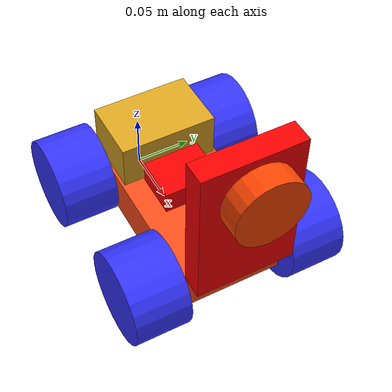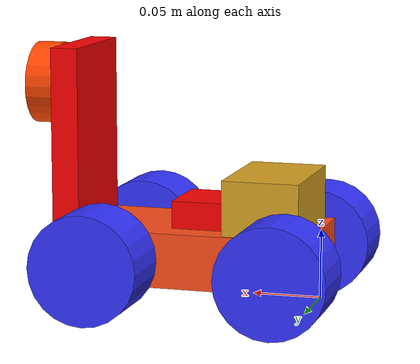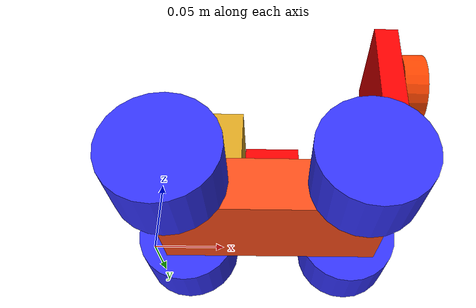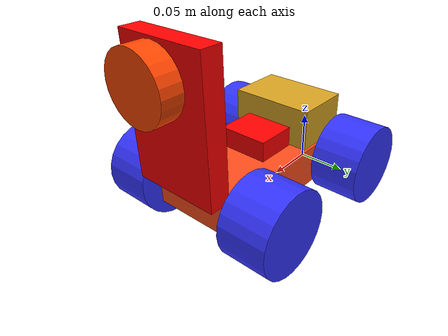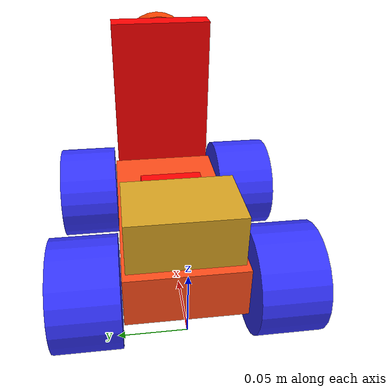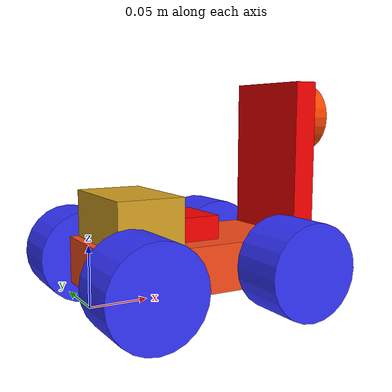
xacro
<?xml version="1.0"?>
<robot xmlns:xacro="http://www.ros.org/wiki/xacro"  name="piper">

    <xacro:include filename="robot_core.xacro" />

    <xacro:include filename="ros2_control.xacro" />

    <xacro:include filename="lidar.xacro" />

    <xacro:include filename="imu.xacro" />

</robot>

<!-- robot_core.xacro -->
<robot xmlns:xacro="http://www.ros.org/wiki/xacro" >

    <xacro:include filename="inertial_macros.xacro"/>

    <material name="white">
        <color rgba="1 1 1 1" />
    </material>

    <material name="orange">
        <color rgba="1 0.3 0.1 1"/>
    </material>

    <material name="blue">
        <color rgba="0.2 0.2 1 1"/>
    </material>

    <material name="black">
        <color rgba="0 0 0 1"/>
    </material>

    <material name="red">
        <color rgba="1 0 0 1"/>
    </material>

    <material name="golden rod">
        <color rgba="0.85 0.64 0.13 1"/>
    </material>

    <material name="orange red">
        <color rgba="1 0.27 0 1"/>
    </material>

    <!-- BASE LINK -->

    <link name="base_link">

    </link>

    <!-- CHASSIS LINK -->

    <joint name="chassis_joint" type="fixed">
        <parent link="base_link"/>
        <child link="chassis"/>
        <origin xyz="0.085 0 0.01"/>
    </joint>

    <link name="chassis">
        <visual>
            <origin xyz="0 0 0.02"/>
            <geometry>
                <box size="0.17 0.09 0.04"/>
            </geometry>
            <material name="orange"/>
        </visual>
        <collision>
            <origin xyz="0 0 0.02"/>
            <geometry>
                <box size="0.17 0.09 0.04"/>
            </geometry>
        </collision>
        <xacro:inertial_box mass="1" x="0.17" y="0.09" z="0.04">
            <origin xyz="0 0 0.02" rpy="0 0 0"/>
        </xacro:inertial_box>
    </link>

    <gazebo reference="chassis">
        <material>Gazebo/Orange</material>
    </gazebo>

    <!-- LIDAR HOLDER -->

    <joint name="lidar_holder_joint" type="fixed">
        <parent link="chassis"/>
        <child link="lidar_holder"/>
        <origin xyz="0.095 0 0.04"/>
    </joint>

    <link name="lidar_holder">
        <visual>
            <origin xyz="0 0 0.065"/>
            <geometry>
                <box size="0.02 0.085 0.13"/>
            </geometry>
            <material name="red"/>
        </visual>
        <collision>
            <origin xyz="0 0 0.065"/>
            <geometry>
                <box size="0.02 0.085 0.13"/>
            </geometry>
        </collision>
        <xacro:inertial_box mass="0.2" x="0.02" y="0.085" z="0.13">
            <origin xyz="0 0 0.065" rpy="0 0 0"/>
        </xacro:inertial_box>

    </link>

    <gazebo reference="lidar_holder">
        <material>Gazebo/Red</material>
    </gazebo>

    <!-- UP BOARD -->

    <joint name="up_board_joint" type="fixed">
        <parent link="chassis"/>
        <child link="up_board"/>
        <origin xyz="-0.05 0 0.04"/>
    </joint>

    <link name="up_board">
        <visual>
            <origin xyz="0 0 0.02"/>
            <geometry>
                <box size="0.056 0.085 0.04"/>
            </geometry>
            <material name="golden rod"/>
        </visual>
        <collision>
            <origin xyz="0 0 0.02"/>
            <geometry>
                <box size="0.056 0.085 0.04"/>
            </geometry>
        </collision>
        <xacro:inertial_box mass="0.2" x="0.056" y="0.085" z="0.04">
            <origin xyz="0 0 0.02" rpy="0 0 0"/>
        </xacro:inertial_box>
    </link>

    <gazebo reference="up_board">
        <material>Gazebo/Gold</material>
    </gazebo>

    <!-- FRONT LEFT WHEEL LINK -->

    <joint name="front_left_wheel_joint" type="continuous">
        <parent link="chassis"/>
        <child link="front_left_wheel"/>
        <origin xyz="0.065 0.07 0.02" rpy="-${pi/2} 0 0" />
        <axis xyz="0 0 1"/>
    </joint>

    <link name="front_left_wheel">
        <visual>
            <geometry>
                <cylinder radius="0.04" length="0.048" n="50"/>
            </geometry>
            <material name="blue"/>
        </visual>
        <collision>
            <geometry>
                <cylinder radius="0.04" length="0.048" n="50"/>
            </geometry>
        </collision>
        <xacro:inertial_cylinder mass="2" length="0.048" radius="0.04">
            <origin xyz="0 0 0" rpy="0 0 0"/>
        </xacro:inertial_cylinder>
    </link>

    <gazebo reference="front_left_wheel">
        <material>Gazebo/Blue</material>
    </gazebo>

    <!-- FRONT RIGHT WHEEL LINK -->

    <joint name="front_right_wheel_joint" type="continuous">
        <parent link="chassis"/>
        <child link="front_right_wheel"/>
        <origin xyz="0.065 -0.07 0.02" rpy="${pi/2} 0 0" />
        <axis xyz="0 0 -1"/>
    </joint>

    <link name="front_right_wheel">
        <visual>
            <geometry>
                <cylinder radius="0.04" length="0.048" n="50"/>
            </geometry>
            <material name="blue"/>
        </visual>
        <collision>
            <geometry>
                <cylinder radius="0.04" length="0.048" n="50"/>
            </geometry>
        </collision>
        <xacro:inertial_cylinder mass="2" length="0.048" radius="0.04">
            <origin xyz="0 0 0" rpy="0 0 0"/>
        </xacro:inertial_cylinder>
    </link>

    <gazebo reference="front_right_wheel">
        <material>Gazebo/Blue</material>
    </gazebo>

    <!-- BACK LEFT WHEEL LINK -->

    <joint name="back_left_wheel_joint" type="continuous">
        <parent link="chassis"/>
        <child link="back_left_wheel"/>
        <origin xyz="-0.07 0.07 0.02" rpy="-${pi/2} 0 0" />
        <axis xyz="0 0 1"/>
    </joint>

    <link name="back_left_wheel">
        <visual>
            <geometry>
                <cylinder radius="0.04" length="0.048" n="50"/>
            </geometry>
            <material name="blue"/>
        </visual>
        <collision>
            <geometry>
                <cylinder radius="0.04" length="0.048" n="50"/>
            </geometry>
        </collision>
        <xacro:inertial_cylinder mass="2" length="0.048" radius="0.04">
            <origin xyz="0 0 0" rpy="0 0 0"/>
        </xacro:inertial_cylinder>
    </link>

    <gazebo reference="back_left_wheel">
        <material>Gazebo/Blue</material>
    </gazebo>

    <!-- BACK RIGHT WHEEL LINK -->

    <joint name="back_right_wheel_joint" type="continuous">
        <parent link="chassis"/>
        <child link="back_right_wheel"/>
        <origin xyz="-0.07 -0.07 0.02" rpy="${pi/2} 0 0" />
        <axis xyz="0 0 -1"/>
    </joint>

    <link name="back_right_wheel">
        <visual>
            <geometry>
                <cylinder radius="0.04" length="0.048" n="50"/>
            </geometry>
            <material name="blue"/>
        </visual>
        <collision>
            <geometry>
                <cylinder radius="0.04" length="0.048" n="50"/>
            </geometry>
        </collision>
        <xacro:inertial_cylinder mass="2" length="0.048" radius="0.04">
            <origin xyz="0 0 0" rpy="0 0 0"/>
        </xacro:inertial_cylinder>
    </link>

    <gazebo reference="back_right_wheel">
        <material>Gazebo/Blue</material>
    </gazebo>

</robot>

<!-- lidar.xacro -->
<robot xmlns:xacro="http://www.ros.org/wiki/xacro">

    <!-- Lidar -->

    <joint name="lidar_joint" type="fixed">
        <parent link="chassis"/>
        <child link="laser_link"/>
        <origin xyz="0.11 0 0.14" rpy="0 ${pi/2} 0"/>
    </joint>

    <link name="laser_link">
        <visual>
            <origin xyz="0 0 0.01" rpy="0 0 0"/>
            <geometry>
                <cylinder radius="0.03" length="0.02"/>
            </geometry>
            <material name="orange red"/>
        </visual>
        <collision>
            <geometry>
                <cylinder radius="0.03" length="0.02"/>
            </geometry>
        </collision>
        <xacro:inertial_cylinder mass="0.1" length="0.02" radius="0.03">
            <origin xyz="0 0 0" rpy="0 0 0"/>
        </xacro:inertial_cylinder>
    </link>

    <gazebo reference="laser_link">
        <material>Gazebo/RedBright</material>

        <sensor name="laser" type="ray">
            <pose> 0 0 0 0 0 0 </pose>
            <visualize>true</visualize>
            <update_rate>6</update_rate>
            <ray>
                <scan>
                    <horizontal>
                        <samples>666</samples> <!--  The physical LD14P lidar distance readings ranged from 662 to 672, but the average was 666.39   -->
                        <min_angle>0</min_angle>
                        <max_angle>6.283185307</max_angle>
                    </horizontal>
                </scan>
                <range>
                    <min>0.1</min>
                    <max>8</max>
                </range>
                <intensity>
                    <min>0</min>
                    <max>255</max>
                </intensity>
            </ray>
            <plugin name="laser_controller" filename="libgazebo_ros_ray_sensor.so">
                <ros>
                    <argument>~/out:=scan</argument>
                </ros>
                <output_type>sensor_msgs/LaserScan</output_type>
                <frame_name>base_laser</frame_name>
            </plugin>
        </sensor>
    </gazebo>

</robot>

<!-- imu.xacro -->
<robot xmlns:xacro="http://www.ros.org/wiki/xacro">

    <!-- Accelerometer and gyroscope -->

    <joint name="imu_joint" type="fixed">
        <parent link="chassis"/>
        <child link="imu_link"/>
        <origin xyz="0 0 0.04"/>
    </joint>

    <link name="imu_link">
        <visual>
            <origin xyz="0 0 0.01"/>
            <geometry>
                <box size="0.04 0.05 0.02"/>
            </geometry>
            <material name="red"/>
        </visual>
        <collision>
            <origin xyz="0 0 0.01"/>
            <geometry>
                <box size="0.04 0.05 0.02"/>
            </geometry>
        </collision>
        <xacro:inertial_box mass="0.05" x="0.04" y="0.05" z="0.02">
            <origin xyz="0 0 0.01" rpy="0 0 0"/>
        </xacro:inertial_box>
    </link>

    <gazebo reference="imu_link">
        <material>Gazebo/Red</material>
        <sensor name="imu_sensor" type="imu">
            <always_on>true</always_on>
            <update_rate>100</update_rate>
            <visualize>true</visualize>
            <plugin filename="libgazebo_ros_imu_sensor.so" name="imu_plugin">
                <topicName>imu</topicName>
                <bodyName>imu_link</bodyName>
                <updateRateHZ>10.0</updateRateHZ>
                <gaussianNoise>0.0</gaussianNoise>
                <xyzOffset>0 0 0</xyzOffset>
                <rpyOffset>0 0 0</rpyOffset>
                <frameName>imu_link</frameName>
                <initialOrientationAsReference>false</initialOrientationAsReference>
            </plugin>
            <pose>0 0 0 0 0 0</pose>
        </sensor>
    </gazebo>

</robot>
